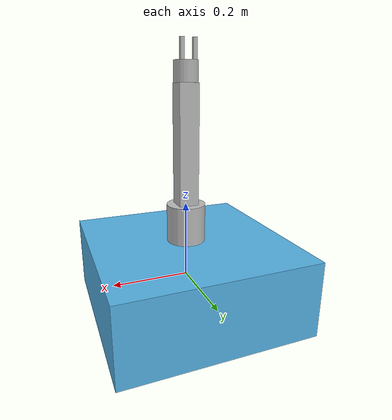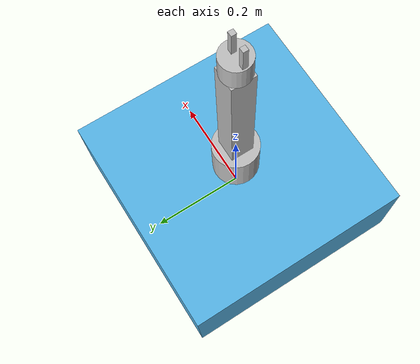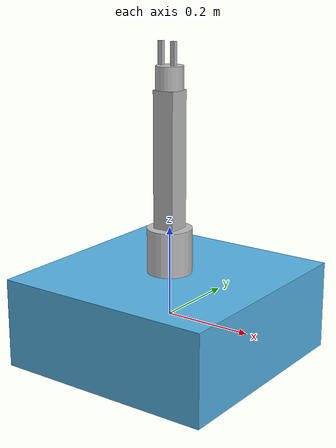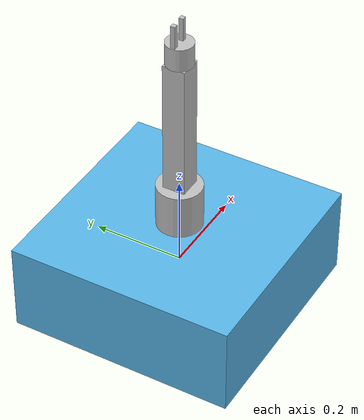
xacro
<?xml version="1.0"?>
<robot name="g500_arm" xmlns:xacro="http://www.ros.org/wiki/xacro">

   <xacro:macro name="inertial_matrix" params="mass">
      <inertial>
      	<mass value="${mass}" />
        <inertia ixx="1.0" ixy="0.0" ixz="0.0" iyy="0.0" iyz="0.0" izz="1.0" />
      </inertial>
   </xacro:macro>

   <xacro:macro name="transmission_block" params="joint_name">
    <transmission name="${joint_name}_trans">
      <type>transmission_interface/SimpleTransmission</type>
      <joint name="${joint_name}">
        <hardwareInterface>PositionJointInterface</hardwareInterface>
      </joint>
      <actuator name="${joint_name}_motor">
        <hardwareInterface>PositionJointInterface</hardwareInterface>
        <mechanicalReduction>1</mechanicalReduction>
      </actuator>
    </transmission>
   </xacro:macro>

  <!-- base of the robot -->

  <link name="bottom_link" />

  <link name="base" >
    <visual>
      <origin rpy="0 0 0" xyz="0 0 0" />
      <geometry>
        <box size="0.5 0.5 0.2" />
      </geometry>
    </visual>
    <collision>
      <geometry>
        <box size="1 1 0.2" />
      </geometry>
    </collision>
    <xacro:inertial_matrix mass="100" />
  </link>

  <joint name="botton_link_joint" type="fixed" >
    <origin rpy="0 0 0" xyz="0 0 0" />
    <parent link="bottom_link" />
    <child link="base"/>
  </joint>

  <link name="base_link">
    <visual>
        <origin rpy="0 0 0" xyz="0 0 0.05" />
        <geometry>
            <cylinder length="0.1" radius="0.05" />
        </geometry>
        <material name="LightGrey">
          <color rgba="0.75 0.75 0.75 1.0"/>
      </material>
    </visual>
    <colision>
        <origin rpy="0 0 0" xyz="0 0 0 " />
        <geometry>
            <cylinder length="0.1" radius="0.05"/>
        </geometry>
    </colision>
    <xacro:inertial_matrix mass="1" />
  </link>

  <joint name="base_link_joint" type="revolute" >
    <origin rpy="0 0 0" xyz="0 0 0.1" />
    <parent link="base" />
    <child link="base_link" />
    <axis xyz="0 0 1" />
    <limit effort="300" lower="-3.14" upper="3.14" velocity="1" />
  </joint>

  <gazebo reference="base_link" >
    <material>Gazebo/Black</material>
    <turnGravityOff>false</turnGravityOff>
  </gazebo>

  <link name="after_base_link" >
    <visual>
      <origin rpy="0 0 0" xyz="0 0 0.15"/>
      <geometry>
        <box size="0.05 0.05 0.3" />
      </geometry>
      <material name="LightGrey">
        <color rgba="0.75 0.75 0.75 1.0"/>
      </material>
    </visual>
    <collision>
      <origin rpy="0 0 0" xyz="0 0 0.1"/>
      <geometry>
        <box size="0.05 0.05 0.3" />
      </geometry>
    </collision>
    <xacro:inertial_matrix mass="1" />
  </link>

  <joint name="after_base_joint" type="revolute">
    <origin rpy="0 0 0" xyz="0 0 0.1" />
    <parent link="base_link" />
    <child link="after_base_link" />
    <axis xyz="0 1 0" />
    <limit effort="300" lower="${-3.14/2}" upper="${3.14/2}" velocity="1" />
  </joint>

  <link name="effector_link" >
    <visual>
      <origin rpy="0 0 0" xyz="0 0 0.025" />
      <geometry>
        <cylinder length="0.05" radius="0.03" />
      </geometry>
      <material name="LightGrey">
        <color rgba="0.75 0.75 0.75 1.0"/>
      </material>
    </visual>
    <collision>
      <origin rpy="0 0 0" xyz="0 0 0.05" />
      <geometry>
        <cylinder length="0.05" radius="0.01" />
      </geometry>
    </collision>
    <xacro:inertial_matrix mass="1" />
  </link>

  <joint name="effector_joint" type="revolute">
    <origin rpy="0 0 0" xyz="0 0 0.3" />
    <parent link="after_base_link" />
    <child link="effector_link" />
    <axis xyz="0 0 1" />
    <limit effort="300" lower="-3.14" upper="3.14" velocity="1" />
  </joint>

  <!-- END EFFECTOR DESCRIPTION -->
  <link name="end_effector_link1" >
    <visual>
      <origin rpy="0 0 0" xyz="0 0 0.025" />
      <geometry>
        <box size="0.01 0.01 0.05" />
      </geometry>
      <material name="LightGrey">
        <color rgba="0.75 0.75 0.75 1.0"/>
      </material>
    </visual>
    <collision>
      <origin rpy="0 0 0" xyz="0 0 0.025" />
      <geometry>
        <box size="0.01 0.01 0.05" />
      </geometry>
    </collision>
    <xacro:inertial_matrix mass="1" />
  </link>

  <gazebo reference="end_effector_link" >
    <material>Gazebo/Red</material>
  </gazebo>

  <joint name="end_effector_joint1" type="prismatic" >
    <origin rpy="0 0 0" xyz="0.01 0 0.05" />
    <parent link="effector_link" />
    <child link="end_effector_link1" />
    <axis xyz="1 0 0" />
    <limit effort="300" lower="0" upper="0.015" velocity="1" />
  </joint>

    <link name="end_effector_link2" >
    <visual>
      <origin rpy="0 0 0" xyz="-0.012 0 0.025" />
      <geometry>
        <box size="0.01 0.01 0.05" />
      </geometry>
      <material name="LightGrey">
        <color rgba="0.75 0.75 0.75 1.0"/>
      </material>
    </visual>
    <collision>
      <origin rpy="0 0 0" xyz="0 0 0.025" />
      <geometry>
        <box size="0.01 0.01 0.05" />
      </geometry>
    </collision>
    <xacro:inertial_matrix mass="1" />
  </link>

  <gazebo reference="end_effector_link" >
    <material>Gazebo/Red</material>
  </gazebo>

  <joint name="end_effector_joint2" type="prismatic" >
    <origin rpy="0 0 0" xyz="-0.01 0 0.05" />
    <parent link="effector_link" />
    <child link="end_effector_link2" />
    <axis xyz="1 0 0" />
    <limit effort="300" lower="-0.015" upper="0" velocity="1" />
  </joint>

  <xacro:transmission_block joint_name="base_link_joint" />
  <xacro:transmission_block joint_name="after_base_joint" />
  <xacro:transmission_block joint_name="effector_joint" />
  <xacro:transmission_block joint_name="end_effector_joint" />

</robot>
